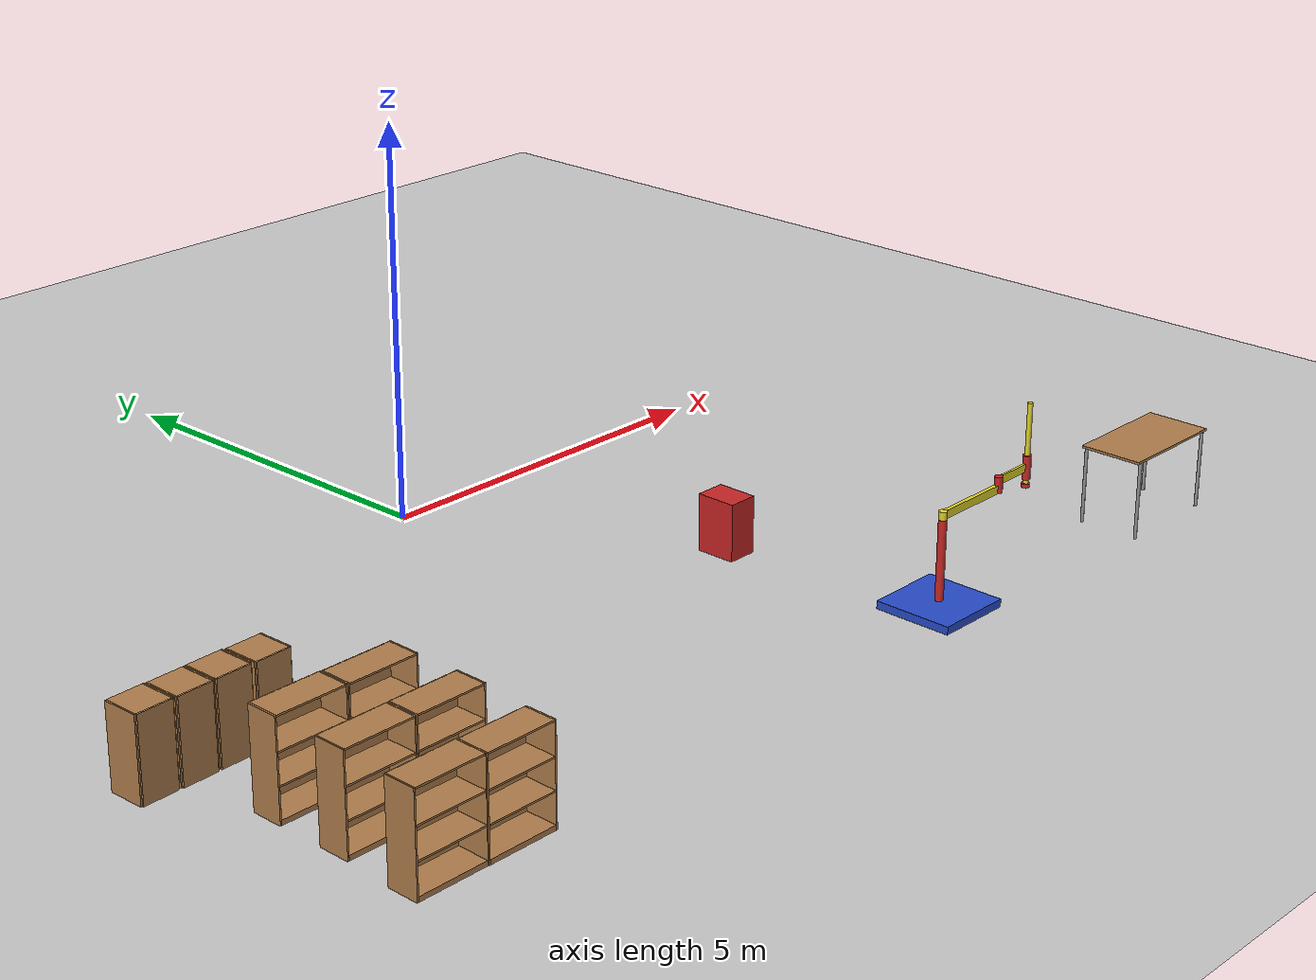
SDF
<sdf version="1.7">
 <world name="default">
  <model name="ground_plane">
   <static>1</static>
   <link name="link">
    <collision name="collision">
     <geometry><plane><normal>0 0 1</normal><size>100 100</size></plane></geometry>
     <surface><friction><ode><mu>100</mu><mu2>50</mu2></ode></friction></surface>
    </collision>
    <visual name="visual">
     <cast_shadows>0</cast_shadows>
     <geometry><plane><normal>0 0 1</normal><size>100 100</size></plane></geometry>
     <material>
      <script><uri>file://media/materials/scripts/gazebo.material</uri><name>Gazebo/Grey</name></script>
     </material>
    </visual>
   </link>
  </model>
  <model name="unit_box_red">
   <link name="link">
    <inertial>
     <mass>1</mass>
     <inertia>
      <ixx>0.166667</ixx>
      <ixy>0</ixy>
      <ixz>0</ixz>
      <iyy>0.166667</iyy>
      <iyz>0</iyz>
      <izz>0.166667</izz>
     </inertia>
    </inertial>
    <visual name="visual">
     <geometry><box><size>0.386843 0.517416 0.730192</size></box></geometry>
     <material>
      <script><name>Gazebo/Red</name><uri>file://media/materials/scripts/gazebo.material</uri></script>
      <shader type="pixel"><normal_map>__default__</normal_map></shader>
      <ambient>1 0 0 1</ambient>
      <diffuse>1 0 0 1</diffuse>
      <specular>0.1 0.1 0.1 1</specular>
      <emissive>0 0 0 1</emissive>
     </material>
    </visual>
    <collision name="collision">
     <geometry><box><size>0.386843 0.517416 0.730192</size></box></geometry>
     <surface>
      <friction>
       <ode><mu>1</mu><mu2>1</mu2><fdir1>0 0 0</fdir1><slip1>0</slip1><slip2>0</slip2></ode>
       <torsional>
        <coefficient>1</coefficient>
        <patch_radius>0</patch_radius>
        <surface_radius>0</surface_radius>
        <use_patch_radius>1</use_patch_radius>
        <ode><slip>0</slip></ode>
       </torsional>
      </friction>
      <bounce><restitution_coefficient>0</restitution_coefficient><threshold>1e+06</threshold></bounce>
      <contact>
       <collide_without_contact>0</collide_without_contact>
       <collide_without_contact_bitmask>1</collide_without_contact_bitmask>
       <collide_bitmask>1</collide_bitmask>
       <ode>
        <soft_cfm>0</soft_cfm>
        <soft_erp>0.2</soft_erp>
        <kp>1e+13</kp>
        <kd>1</kd>
        <max_vel>0.01</max_vel>
        <min_depth>0</min_depth>
       </ode>
       <bullet>
        <split_impulse>1</split_impulse>
        <split_impulse_penetration_threshold>-0.01</split_impulse_penetration_threshold>
        <soft_cfm>0</soft_cfm>
        <soft_erp>0.2</soft_erp>
        <kp>1e+13</kp>
        <kd>1</kd>
       </bullet>
      </contact>
     </surface>
    </collision>
   </link>
   <static>0</static>
   <pose>1.9665 -3.5361 0.365096 -0 -0 -0</pose>
  </model>
  <model name="table_clone_1_clone_0">
   <static>1</static>
   <link name="link">
    <collision name="surface">
     <pose>0 0 1 0 -0 0</pose>
     <geometry><box><size>1.5 0.8 0.03</size></box></geometry>
     <surface><friction><ode><mu>0.6</mu><mu2>0.6</mu2></ode></friction></surface>
    </collision>
    <visual name="visual1">
     <pose>0 0 1 0 -0 0</pose>
     <geometry><box><size>1.5 0.8 0.03</size></box></geometry>
     <material>
      <script><uri>file://media/materials/scripts/gazebo.material</uri><name>Gazebo/Wood</name></script>
     </material>
    </visual>
    <collision name="front_left_leg">
     <pose>0.68 0.38 0.5 0 -0 0</pose>
     <geometry><cylinder><radius>0.02</radius><length>1</length></cylinder></geometry>
    </collision>
    <visual name="front_left_leg">
     <pose>0.68 0.38 0.5 0 -0 0</pose>
     <geometry><cylinder><radius>0.02</radius><length>1</length></cylinder></geometry>
     <material>
      <script><uri>file://media/materials/scripts/gazebo.material</uri><name>Gazebo/Grey</name></script>
     </material>
    </visual>
    <collision name="front_right_leg">
     <pose>0.68 -0.38 0.5 0 -0 0</pose>
     <geometry><cylinder><radius>0.02</radius><length>1</length></cylinder></geometry>
    </collision>
    <visual name="front_right_leg">
     <pose>0.68 -0.38 0.5 0 -0 0</pose>
     <geometry><cylinder><radius>0.02</radius><length>1</length></cylinder></geometry>
     <material>
      <script><uri>file://media/materials/scripts/gazebo.material</uri><name>Gazebo/Grey</name></script>
     </material>
    </visual>
    <collision name="back_right_leg">
     <pose>-0.68 -0.38 0.5 0 -0 0</pose>
     <geometry><cylinder><radius>0.02</radius><length>1</length></cylinder></geometry>
    </collision>
    <visual name="back_right_leg">
     <pose>-0.68 -0.38 0.5 0 -0 0</pose>
     <geometry><cylinder><radius>0.02</radius><length>1</length></cylinder></geometry>
     <material>
      <script><uri>file://media/materials/scripts/gazebo.material</uri><name>Gazebo/Grey</name></script>
     </material>
    </visual>
    <collision name="back_left_leg">
     <pose>-0.68 0.38 0.5 0 -0 0</pose>
     <geometry><cylinder><radius>0.02</radius><length>1</length></cylinder></geometry>
    </collision>
    <visual name="back_left_leg">
     <pose>-0.68 0.38 0.5 0 -0 0</pose>
     <geometry><cylinder><radius>0.02</radius><length>1</length></cylinder></geometry>
     <material>
      <script><uri>file://media/materials/scripts/gazebo.material</uri><name>Gazebo/Grey</name></script>
     </material>
    </visual>
   </link>
   <pose>6.2861 -6.51699 0 0 -0 0</pose>
  </model>
  <model name="bookshelf_clone_0_clone">
   <static>1</static>
   <link name="link">
    <inertial><mass>1</mass></inertial>
    <collision name="back">
     <pose>0 0.005 0.6 0 -0 0</pose>
     <geometry><box><size>0.9 0.01 1.2</size></box></geometry>
    </collision>
    <visual name="visual1">
     <pose>0 0.005 0.6 0 -0 0</pose>
     <geometry><box><size>0.9 0.01 1.2</size></box></geometry>
     <material>
      <script><uri>file://media/materials/scripts/gazebo.material</uri><name>Gazebo/Wood</name></script>
     </material>
    </visual>
    <collision name="left_side">
     <pose>0.45 -0.195 0.6 0 -0 0</pose>
     <geometry><box><size>0.02 0.4 1.2</size></box></geometry>
    </collision>
    <visual name="visual2">
     <pose>0.45 -0.195 0.6 0 -0 0</pose>
     <geometry><box><size>0.02 0.4 1.2</size></box></geometry>
     <material>
      <script><uri>file://media/materials/scripts/gazebo.material</uri><name>Gazebo/Wood</name></script>
     </material>
    </visual>
    <collision name="right_side">
     <pose>-0.45 -0.195 0.6 0 -0 0</pose>
     <geometry><box><size>0.02 0.4 1.2</size></box></geometry>
    </collision>
    <visual name="visual3">
     <pose>-0.45 -0.195 0.6 0 -0 0</pose>
     <geometry><box><size>0.02 0.4 1.2</size></box></geometry>
     <material>
      <script><uri>file://media/materials/scripts/gazebo.material</uri><name>Gazebo/Wood</name></script>
     </material>
    </visual>
    <collision name="bottom">
     <pose>0 -0.195 0.03 0 -0 0</pose>
     <geometry><box><size>0.88 0.4 0.06</size></box></geometry>
    </collision>
    <visual name="visual4">
     <pose>0 -0.195 0.03 0 -0 0</pose>
     <geometry><box><size>0.88 0.4 0.06</size></box></geometry>
     <material>
      <script><uri>file://media/materials/scripts/gazebo.material</uri><name>Gazebo/Wood</name></script>
     </material>
    </visual>
    <collision name="top">
     <pose>0 -0.195 1.19 0 -0 0</pose>
     <geometry><box><size>0.88 0.4 0.02</size></box></geometry>
    </collision>
    <visual name="visual5">
     <pose>0 -0.195 1.19 0 -0 0</pose>
     <geometry><box><size>0.88 0.4 0.02</size></box></geometry>
     <material>
      <script><uri>file://media/materials/scripts/gazebo.material</uri><name>Gazebo/Wood</name></script>
     </material>
    </visual>
    <collision name="low_shelf">
     <pose>0 -0.195 0.43 0 -0 0</pose>
     <geometry><box><size>0.88 0.4 0.02</size></box></geometry>
    </collision>
    <visual name="visual6">
     <pose>0 -0.195 0.43 0 -0 0</pose>
     <geometry><box><size>0.88 0.4 0.02</size></box></geometry>
     <material>
      <script><uri>file://media/materials/scripts/gazebo.material</uri><name>Gazebo/Wood</name></script>
     </material>
    </visual>
    <collision name="high_shelf">
     <pose>0 -0.195 0.8 0 -0 0</pose>
     <geometry><box><size>0.88 0.4 0.02</size></box></geometry>
    </collision>
    <visual name="visual7">
     <pose>0 -0.195 0.8 0 -0 0</pose>
     <geometry><box><size>0.88 0.4 0.02</size></box></geometry>
     <material>
      <script><uri>file://media/materials/scripts/gazebo.material</uri><name>Gazebo/Wood</name></script>
     </material>
    </visual>
   </link>
   <pose>-5.36716 -4.2258 0 0 -0 -0.003358</pose>
  </model>
  <model name="bookshelf_clone_0_clone_clone">
   <static>1</static>
   <link name="link">
    <inertial><mass>1</mass></inertial>
    <collision name="back">
     <pose>0 0.005 0.6 0 -0 0</pose>
     <geometry><box><size>0.9 0.01 1.2</size></box></geometry>
    </collision>
    <visual name="visual1">
     <pose>0 0.005 0.6 0 -0 0</pose>
     <geometry><box><size>0.9 0.01 1.2</size></box></geometry>
     <material>
      <script><uri>file://media/materials/scripts/gazebo.material</uri><name>Gazebo/Wood</name></script>
     </material>
    </visual>
    <collision name="left_side">
     <pose>0.45 -0.195 0.6 0 -0 0</pose>
     <geometry><box><size>0.02 0.4 1.2</size></box></geometry>
    </collision>
    <visual name="visual2">
     <pose>0.45 -0.195 0.6 0 -0 0</pose>
     <geometry><box><size>0.02 0.4 1.2</size></box></geometry>
     <material>
      <script><uri>file://media/materials/scripts/gazebo.material</uri><name>Gazebo/Wood</name></script>
     </material>
    </visual>
    <collision name="right_side">
     <pose>-0.45 -0.195 0.6 0 -0 0</pose>
     <geometry><box><size>0.02 0.4 1.2</size></box></geometry>
    </collision>
    <visual name="visual3">
     <pose>-0.45 -0.195 0.6 0 -0 0</pose>
     <geometry><box><size>0.02 0.4 1.2</size></box></geometry>
     <material>
      <script><uri>file://media/materials/scripts/gazebo.material</uri><name>Gazebo/Wood</name></script>
     </material>
    </visual>
    <collision name="bottom">
     <pose>0 -0.195 0.03 0 -0 0</pose>
     <geometry><box><size>0.88 0.4 0.06</size></box></geometry>
    </collision>
    <visual name="visual4">
     <pose>0 -0.195 0.03 0 -0 0</pose>
     <geometry><box><size>0.88 0.4 0.06</size></box></geometry>
     <material>
      <script><uri>file://media/materials/scripts/gazebo.material</uri><name>Gazebo/Wood</name></script>
     </material>
    </visual>
    <collision name="top">
     <pose>0 -0.195 1.19 0 -0 0</pose>
     <geometry><box><size>0.88 0.4 0.02</size></box></geometry>
    </collision>
    <visual name="visual5">
     <pose>0 -0.195 1.19 0 -0 0</pose>
     <geometry><box><size>0.88 0.4 0.02</size></box></geometry>
     <material>
      <script><uri>file://media/materials/scripts/gazebo.material</uri><name>Gazebo/Wood</name></script>
     </material>
    </visual>
    <collision name="low_shelf">
     <pose>0 -0.195 0.43 0 -0 0</pose>
     <geometry><box><size>0.88 0.4 0.02</size></box></geometry>
    </collision>
    <visual name="visual6">
     <pose>0 -0.195 0.43 0 -0 0</pose>
     <geometry><box><size>0.88 0.4 0.02</size></box></geometry>
     <material>
      <script><uri>file://media/materials/scripts/gazebo.material</uri><name>Gazebo/Wood</name></script>
     </material>
    </visual>
    <collision name="high_shelf">
     <pose>0 -0.195 0.8 0 -0 0</pose>
     <geometry><box><size>0.88 0.4 0.02</size></box></geometry>
    </collision>
    <visual name="visual7">
     <pose>0 -0.195 0.8 0 -0 0</pose>
     <geometry><box><size>0.88 0.4 0.02</size></box></geometry>
     <material>
      <script><uri>file://media/materials/scripts/gazebo.material</uri><name>Gazebo/Wood</name></script>
     </material>
    </visual>
   </link>
   <pose>-5.35952 -5.19703 0 0 0 -0.003358</pose>
  </model>
  <model name="bookshelf_clone_0_clone_clone_0">
   <static>1</static>
   <link name="link">
    <inertial><mass>1</mass></inertial>
    <collision name="back">
     <pose>0 0.005 0.6 0 -0 0</pose>
     <geometry><box><size>0.9 0.01 1.2</size></box></geometry>
    </collision>
    <visual name="visual1">
     <pose>0 0.005 0.6 0 -0 0</pose>
     <geometry><box><size>0.9 0.01 1.2</size></box></geometry>
     <material>
      <script><uri>file://media/materials/scripts/gazebo.material</uri><name>Gazebo/Wood</name></script>
     </material>
    </visual>
    <collision name="left_side">
     <pose>0.45 -0.195 0.6 0 -0 0</pose>
     <geometry><box><size>0.02 0.4 1.2</size></box></geometry>
    </collision>
    <visual name="visual2">
     <pose>0.45 -0.195 0.6 0 -0 0</pose>
     <geometry><box><size>0.02 0.4 1.2</size></box></geometry>
     <material>
      <script><uri>file://media/materials/scripts/gazebo.material</uri><name>Gazebo/Wood</name></script>
     </material>
    </visual>
    <collision name="right_side">
     <pose>-0.45 -0.195 0.6 0 -0 0</pose>
     <geometry><box><size>0.02 0.4 1.2</size></box></geometry>
    </collision>
    <visual name="visual3">
     <pose>-0.45 -0.195 0.6 0 -0 0</pose>
     <geometry><box><size>0.02 0.4 1.2</size></box></geometry>
     <material>
      <script><uri>file://media/materials/scripts/gazebo.material</uri><name>Gazebo/Wood</name></script>
     </material>
    </visual>
    <collision name="bottom">
     <pose>0 -0.195 0.03 0 -0 0</pose>
     <geometry><box><size>0.88 0.4 0.06</size></box></geometry>
    </collision>
    <visual name="visual4">
     <pose>0 -0.195 0.03 0 -0 0</pose>
     <geometry><box><size>0.88 0.4 0.06</size></box></geometry>
     <material>
      <script><uri>file://media/materials/scripts/gazebo.material</uri><name>Gazebo/Wood</name></script>
     </material>
    </visual>
    <collision name="top">
     <pose>0 -0.195 1.19 0 -0 0</pose>
     <geometry><box><size>0.88 0.4 0.02</size></box></geometry>
    </collision>
    <visual name="visual5">
     <pose>0 -0.195 1.19 0 -0 0</pose>
     <geometry><box><size>0.88 0.4 0.02</size></box></geometry>
     <material>
      <script><uri>file://media/materials/scripts/gazebo.material</uri><name>Gazebo/Wood</name></script>
     </material>
    </visual>
    <collision name="low_shelf">
     <pose>0 -0.195 0.43 0 -0 0</pose>
     <geometry><box><size>0.88 0.4 0.02</size></box></geometry>
    </collision>
    <visual name="visual6">
     <pose>0 -0.195 0.43 0 -0 0</pose>
     <geometry><box><size>0.88 0.4 0.02</size></box></geometry>
     <material>
      <script><uri>file://media/materials/scripts/gazebo.material</uri><name>Gazebo/Wood</name></script>
     </material>
    </visual>
    <collision name="high_shelf">
     <pose>0 -0.195 0.8 0 -0 0</pose>
     <geometry><box><size>0.88 0.4 0.02</size></box></geometry>
    </collision>
    <visual name="visual7">
     <pose>0 -0.195 0.8 0 -0 0</pose>
     <geometry><box><size>0.88 0.4 0.02</size></box></geometry>
     <material>
      <script><uri>file://media/materials/scripts/gazebo.material</uri><name>Gazebo/Wood</name></script>
     </material>
    </visual>
   </link>
   <pose>-5.40621 -6.21049 0 0 0 -0.003358</pose>
  </model>
  <model name="bookshelf_clone_0_clone_clone_1">
   <static>1</static>
   <link name="link">
    <inertial><mass>1</mass></inertial>
    <collision name="back">
     <pose>0 0.005 0.6 0 -0 0</pose>
     <geometry><box><size>0.9 0.01 1.2</size></box></geometry>
    </collision>
    <visual name="visual1">
     <pose>0 0.005 0.6 0 -0 0</pose>
     <geometry><box><size>0.9 0.01 1.2</size></box></geometry>
     <material>
      <script><uri>file://media/materials/scripts/gazebo.material</uri><name>Gazebo/Wood</name></script>
     </material>
    </visual>
    <collision name="left_side">
     <pose>0.45 -0.195 0.6 0 -0 0</pose>
     <geometry><box><size>0.02 0.4 1.2</size></box></geometry>
    </collision>
    <visual name="visual2">
     <pose>0.45 -0.195 0.6 0 -0 0</pose>
     <geometry><box><size>0.02 0.4 1.2</size></box></geometry>
     <material>
      <script><uri>file://media/materials/scripts/gazebo.material</uri><name>Gazebo/Wood</name></script>
     </material>
    </visual>
    <collision name="right_side">
     <pose>-0.45 -0.195 0.6 0 -0 0</pose>
     <geometry><box><size>0.02 0.4 1.2</size></box></geometry>
    </collision>
    <visual name="visual3">
     <pose>-0.45 -0.195 0.6 0 -0 0</pose>
     <geometry><box><size>0.02 0.4 1.2</size></box></geometry>
     <material>
      <script><uri>file://media/materials/scripts/gazebo.material</uri><name>Gazebo/Wood</name></script>
     </material>
    </visual>
    <collision name="bottom">
     <pose>0 -0.195 0.03 0 -0 0</pose>
     <geometry><box><size>0.88 0.4 0.06</size></box></geometry>
    </collision>
    <visual name="visual4">
     <pose>0 -0.195 0.03 0 -0 0</pose>
     <geometry><box><size>0.88 0.4 0.06</size></box></geometry>
     <material>
      <script><uri>file://media/materials/scripts/gazebo.material</uri><name>Gazebo/Wood</name></script>
     </material>
    </visual>
    <collision name="top">
     <pose>0 -0.195 1.19 0 -0 0</pose>
     <geometry><box><size>0.88 0.4 0.02</size></box></geometry>
    </collision>
    <visual name="visual5">
     <pose>0 -0.195 1.19 0 -0 0</pose>
     <geometry><box><size>0.88 0.4 0.02</size></box></geometry>
     <material>
      <script><uri>file://media/materials/scripts/gazebo.material</uri><name>Gazebo/Wood</name></script>
     </material>
    </visual>
    <collision name="low_shelf">
     <pose>0 -0.195 0.43 0 -0 0</pose>
     <geometry><box><size>0.88 0.4 0.02</size></box></geometry>
    </collision>
    <visual name="visual6">
     <pose>0 -0.195 0.43 0 -0 0</pose>
     <geometry><box><size>0.88 0.4 0.02</size></box></geometry>
     <material>
      <script><uri>file://media/materials/scripts/gazebo.material</uri><name>Gazebo/Wood</name></script>
     </material>
    </visual>
    <collision name="high_shelf">
     <pose>0 -0.195 0.8 0 -0 0</pose>
     <geometry><box><size>0.88 0.4 0.02</size></box></geometry>
    </collision>
    <visual name="visual7">
     <pose>0 -0.195 0.8 0 -0 0</pose>
     <geometry><box><size>0.88 0.4 0.02</size></box></geometry>
     <material>
      <script><uri>file://media/materials/scripts/gazebo.material</uri><name>Gazebo/Wood</name></script>
     </material>
    </visual>
   </link>
   <pose>-4.44628 -4.23575 0 0 0 -0.003358</pose>
  </model>
  <model name="bookshelf_clone_0_clone_clone_2">
   <static>1</static>
   <link name="link">
    <inertial><mass>1</mass></inertial>
    <collision name="back">
     <pose>0 0.005 0.6 0 -0 0</pose>
     <geometry><box><size>0.9 0.01 1.2</size></box></geometry>
    </collision>
    <visual name="visual1">
     <pose>0 0.005 0.6 0 -0 0</pose>
     <geometry><box><size>0.9 0.01 1.2</size></box></geometry>
     <material>
      <script><uri>file://media/materials/scripts/gazebo.material</uri><name>Gazebo/Wood</name></script>
     </material>
    </visual>
    <collision name="left_side">
     <pose>0.45 -0.195 0.6 0 -0 0</pose>
     <geometry><box><size>0.02 0.4 1.2</size></box></geometry>
    </collision>
    <visual name="visual2">
     <pose>0.45 -0.195 0.6 0 -0 0</pose>
     <geometry><box><size>0.02 0.4 1.2</size></box></geometry>
     <material>
      <script><uri>file://media/materials/scripts/gazebo.material</uri><name>Gazebo/Wood</name></script>
     </material>
    </visual>
    <collision name="right_side">
     <pose>-0.45 -0.195 0.6 0 -0 0</pose>
     <geometry><box><size>0.02 0.4 1.2</size></box></geometry>
    </collision>
    <visual name="visual3">
     <pose>-0.45 -0.195 0.6 0 -0 0</pose>
     <geometry><box><size>0.02 0.4 1.2</size></box></geometry>
     <material>
      <script><uri>file://media/materials/scripts/gazebo.material</uri><name>Gazebo/Wood</name></script>
     </material>
    </visual>
    <collision name="bottom">
     <pose>0 -0.195 0.03 0 -0 0</pose>
     <geometry><box><size>0.88 0.4 0.06</size></box></geometry>
    </collision>
    <visual name="visual4">
     <pose>0 -0.195 0.03 0 -0 0</pose>
     <geometry><box><size>0.88 0.4 0.06</size></box></geometry>
     <material>
      <script><uri>file://media/materials/scripts/gazebo.material</uri><name>Gazebo/Wood</name></script>
     </material>
    </visual>
    <collision name="top">
     <pose>0 -0.195 1.19 0 -0 0</pose>
     <geometry><box><size>0.88 0.4 0.02</size></box></geometry>
    </collision>
    <visual name="visual5">
     <pose>0 -0.195 1.19 0 -0 0</pose>
     <geometry><box><size>0.88 0.4 0.02</size></box></geometry>
     <material>
      <script><uri>file://media/materials/scripts/gazebo.material</uri><name>Gazebo/Wood</name></script>
     </material>
    </visual>
    <collision name="low_shelf">
     <pose>0 -0.195 0.43 0 -0 0</pose>
     <geometry><box><size>0.88 0.4 0.02</size></box></geometry>
    </collision>
    <visual name="visual6">
     <pose>0 -0.195 0.43 0 -0 0</pose>
     <geometry><box><size>0.88 0.4 0.02</size></box></geometry>
     <material>
      <script><uri>file://media/materials/scripts/gazebo.material</uri><name>Gazebo/Wood</name></script>
     </material>
    </visual>
    <collision name="high_shelf">
     <pose>0 -0.195 0.8 0 -0 0</pose>
     <geometry><box><size>0.88 0.4 0.02</size></box></geometry>
    </collision>
    <visual name="visual7">
     <pose>0 -0.195 0.8 0 -0 0</pose>
     <geometry><box><size>0.88 0.4 0.02</size></box></geometry>
     <material>
      <script><uri>file://media/materials/scripts/gazebo.material</uri><name>Gazebo/Wood</name></script>
     </material>
    </visual>
   </link>
   <pose>-4.43433 -5.19452 0 0 0 -0.003358</pose>
  </model>
  <model name="bookshelf_clone_0_clone_clone_3">
   <static>1</static>
   <link name="link">
    <inertial><mass>1</mass></inertial>
    <collision name="back">
     <pose>0 0.005 0.6 0 -0 0</pose>
     <geometry><box><size>0.9 0.01 1.2</size></box></geometry>
    </collision>
    <visual name="visual1">
     <pose>0 0.005 0.6 0 -0 0</pose>
     <geometry><box><size>0.9 0.01 1.2</size></box></geometry>
     <material>
      <script><uri>file://media/materials/scripts/gazebo.material</uri><name>Gazebo/Wood</name></script>
     </material>
    </visual>
    <collision name="left_side">
     <pose>0.45 -0.195 0.6 0 -0 0</pose>
     <geometry><box><size>0.02 0.4 1.2</size></box></geometry>
    </collision>
    <visual name="visual2">
     <pose>0.45 -0.195 0.6 0 -0 0</pose>
     <geometry><box><size>0.02 0.4 1.2</size></box></geometry>
     <material>
      <script><uri>file://media/materials/scripts/gazebo.material</uri><name>Gazebo/Wood</name></script>
     </material>
    </visual>
    <collision name="right_side">
     <pose>-0.45 -0.195 0.6 0 -0 0</pose>
     <geometry><box><size>0.02 0.4 1.2</size></box></geometry>
    </collision>
    <visual name="visual3">
     <pose>-0.45 -0.195 0.6 0 -0 0</pose>
     <geometry><box><size>0.02 0.4 1.2</size></box></geometry>
     <material>
      <script><uri>file://media/materials/scripts/gazebo.material</uri><name>Gazebo/Wood</name></script>
     </material>
    </visual>
    <collision name="bottom">
     <pose>0 -0.195 0.03 0 -0 0</pose>
     <geometry><box><size>0.88 0.4 0.06</size></box></geometry>
    </collision>
    <visual name="visual4">
     <pose>0 -0.195 0.03 0 -0 0</pose>
     <geometry><box><size>0.88 0.4 0.06</size></box></geometry>
     <material>
      <script><uri>file://media/materials/scripts/gazebo.material</uri><name>Gazebo/Wood</name></script>
     </material>
    </visual>
    <collision name="top">
     <pose>0 -0.195 1.19 0 -0 0</pose>
     <geometry><box><size>0.88 0.4 0.02</size></box></geometry>
    </collision>
    <visual name="visual5">
     <pose>0 -0.195 1.19 0 -0 0</pose>
     <geometry><box><size>0.88 0.4 0.02</size></box></geometry>
     <material>
      <script><uri>file://media/materials/scripts/gazebo.material</uri><name>Gazebo/Wood</name></script>
     </material>
    </visual>
    <collision name="low_shelf">
     <pose>0 -0.195 0.43 0 -0 0</pose>
     <geometry><box><size>0.88 0.4 0.02</size></box></geometry>
    </collision>
    <visual name="visual6">
     <pose>0 -0.195 0.43 0 -0 0</pose>
     <geometry><box><size>0.88 0.4 0.02</size></box></geometry>
     <material>
      <script><uri>file://media/materials/scripts/gazebo.material</uri><name>Gazebo/Wood</name></script>
     </material>
    </visual>
    <collision name="high_shelf">
     <pose>0 -0.195 0.8 0 -0 0</pose>
     <geometry><box><size>0.88 0.4 0.02</size></box></geometry>
    </collision>
    <visual name="visual7">
     <pose>0 -0.195 0.8 0 -0 0</pose>
     <geometry><box><size>0.88 0.4 0.02</size></box></geometry>
     <material>
      <script><uri>file://media/materials/scripts/gazebo.material</uri><name>Gazebo/Wood</name></script>
     </material>
    </visual>
   </link>
   <pose>-4.50283 -6.22195 0 0 0 -0.003358</pose>
  </model>
  <model name="simple_arm">
   <link name="arm_base">
    <inertial>
     <pose>0 0 0.00099 0 -0 0</pose>
     <inertia><ixx>1.11</ixx><ixy>0</ixy><ixz>0</ixz><iyy>100.11</iyy><iyz>0</iyz><izz>1.01</izz></inertia>
     <mass>101</mass>
    </inertial>
    <collision name="arm_base_geom">
     <pose>0 0 0.05 0 -0 0</pose>
     <geometry><box><size>1 1 0.1</size></box></geometry>
    </collision>
    <visual name="arm_base_geom_visual">
     <pose>0 0 0.05 0 -0 0</pose>
     <geometry><box><size>1 1 0.1</size></box></geometry>
     <material>
      <script><uri>file://media/materials/scripts/gazebo.material</uri><name>Gazebo/Blue</name></script>
     </material>
    </visual>
    <collision name="arm_base_geom_arm_trunk">
     <pose>0 0 0.6 0 -0 0</pose>
     <geometry><cylinder><radius>0.05</radius><length>1</length></cylinder></geometry>
    </collision>
    <visual name="arm_base_geom_arm_trunk_visual">
     <pose>0 0 0.6 0 -0 0</pose>
     <geometry><cylinder><radius>0.05</radius><length>1</length></cylinder></geometry>
     <material>
      <script><uri>file://media/materials/scripts/gazebo.material</uri><name>Gazebo/Red</name></script>
     </material>
    </visual>
   </link>
   <link name="arm_shoulder_pan">
    <pose>0 0 1.1 0 -0 0</pose>
    <inertial>
     <pose>0.045455 0 0 0 -0 0</pose>
     <inertia><ixx>0.011</ixx><ixy>0</ixy><ixz>0</ixz><iyy>0.0225</iyy><iyz>0</iyz><izz>0.0135</izz></inertia>
     <mass>1.1</mass>
    </inertial>
    <collision name="arm_shoulder_pan_geom">
     <pose>0 0 0.05 0 -0 0</pose>
     <geometry><cylinder><radius>0.05</radius><length>0.1</length></cylinder></geometry>
    </collision>
    <visual name="arm_shoulder_pan_geom_visual">
     <pose>0 0 0.05 0 -0 0</pose>
     <geometry><cylinder><radius>0.05</radius><length>0.1</length></cylinder></geometry>
     <material>
      <script><uri>file://media/materials/scripts/gazebo.material</uri><name>Gazebo/Yellow</name></script>
     </material>
    </visual>
    <collision name="arm_shoulder_pan_geom_arm_shoulder">
     <pose>0.55 0 0.05 0 -0 0</pose>
     <geometry><box><size>1 0.05 0.1</size></box></geometry>
    </collision>
    <visual name="arm_shoulder_pan_geom_arm_shoulder_visual">
     <pose>0.55 0 0.05 0 -0 0</pose>
     <geometry><box><size>1 0.05 0.1</size></box></geometry>
     <material>
      <script><uri>file://media/materials/scripts/gazebo.material</uri><name>Gazebo/Yellow</name></script>
     </material>
    </visual>
   </link>
   <link name="arm_elbow_pan">
    <pose>1.05 0 1.1 0 -0 0</pose>
    <inertial>
     <pose>0.0875 0 0.083333 0 -0 0</pose>
     <inertia>
      <ixx>0.031</ixx>
      <ixy>0</ixy>
      <ixz>0.005</ixz>
      <iyy>0.07275</iyy>
      <iyz>0</iyz>
      <izz>0.04475</izz>
     </inertia>
     <mass>1.2</mass>
    </inertial>
    <collision name="arm_elbow_pan_geom">
     <pose>0 0 0.1 0 -0 0</pose>
     <geometry><cylinder><radius>0.05</radius><length>0.2</length></cylinder></geometry>
    </collision>
    <visual name="arm_elbow_pan_geom_visual">
     <pose>0 0 0.1 0 -0 0</pose>
     <geometry><cylinder><radius>0.05</radius><length>0.2</length></cylinder></geometry>
     <material>
      <script><uri>file://media/materials/scripts/gazebo.material</uri><name>Gazebo/Red</name></script>
     </material>
    </visual>
    <collision name="arm_elbow_pan_geom_arm_elbow">
     <pose>0.3 0 0.15 0 -0 0</pose>
     <geometry><box><size>0.5 0.03 0.1</size></box></geometry>
    </collision>
    <visual name="arm_elbow_pan_geom_arm_elbow_visual">
     <pose>0.3 0 0.15 0 -0 0</pose>
     <geometry><box><size>0.5 0.03 0.1</size></box></geometry>
     <material>
      <script><uri>file://media/materials/scripts/gazebo.material</uri><name>Gazebo/Yellow</name></script>
     </material>
    </visual>
    <collision name="arm_elbow_pan_geom_arm_wrist">
     <pose>0.55 0 0.15 0 -0 0</pose>
     <geometry><cylinder><radius>0.05</radius><length>0.3</length></cylinder></geometry>
    </collision>
    <visual name="arm_elbow_pan_geom_arm_wrist_visual">
     <pose>0.55 0 0.15 0 -0 0</pose>
     <geometry><cylinder><radius>0.05</radius><length>0.3</length></cylinder></geometry>
     <material>
      <script><uri>file://media/materials/scripts/gazebo.material</uri><name>Gazebo/Red</name></script>
     </material>
    </visual>
   </link>
   <link name="arm_wrist_lift">
    <pose>1.6 0 1.05 0 -0 0</pose>
    <inertial>
     <inertia><ixx>0.01</ixx><ixy>0</ixy><ixz>0</ixz><iyy>0.01</iyy><iyz>0</iyz><izz>0.001</izz></inertia>
     <mass>0.1</mass>
    </inertial>
    <collision name="arm_wrist_lift_geom">
     <pose>0 0 0.5 0 -0 0</pose>
     <geometry><cylinder><radius>0.03</radius><length>1</length></cylinder></geometry>
    </collision>
    <visual name="arm_wrist_lift_geom_visual">
     <pose>0 0 0.5 0 -0 0</pose>
     <geometry><cylinder><radius>0.03</radius><length>1</length></cylinder></geometry>
     <material>
      <script><uri>file://media/materials/scripts/gazebo.material</uri><name>Gazebo/Yellow</name></script>
     </material>
    </visual>
   </link>
   <link name="arm_wrist_roll">
    <pose>1.6 0 1 0 -0 0</pose>
    <inertial>
     <inertia><ixx>0.01</ixx><ixy>0</ixy><ixz>0</ixz><iyy>0.01</iyy><iyz>0</iyz><izz>0.001</izz></inertia>
     <mass>0.1</mass>
    </inertial>
    <collision name="arm_wrist_roll_geom">
     <pose>0 0 0.025 0 -0 0</pose>
     <geometry><cylinder><radius>0.05</radius><length>0.05</length></cylinder></geometry>
    </collision>
    <visual name="arm_wrist_roll_geom_visual">
     <pose>0 0 0.025 0 -0 0</pose>
     <geometry><cylinder><radius>0.05</radius><length>0.05</length></cylinder></geometry>
     <material>
      <script><uri>file://media/materials/scripts/gazebo.material</uri><name>Gazebo/Red</name></script>
     </material>
    </visual>
   </link>
   <joint name="arm_shoulder_pan_joint" type="revolute">
    <parent>arm_base</parent>
    <child>arm_shoulder_pan</child>
    <axis>
     <dynamics>
      <damping>1</damping>
      <friction>0</friction>
      <spring_reference>0</spring_reference>
      <spring_stiffness>0</spring_stiffness>
     </dynamics>
     <xyz expressed_in="__model__">0 0 1</xyz>
     <limit><lower>-1e+16</lower><upper>1e+16</upper></limit>
    </axis>
   </joint>
   <joint name="arm_elbow_pan_joint" type="revolute">
    <parent>arm_shoulder_pan</parent>
    <child>arm_elbow_pan</child>
    <axis>
     <dynamics>
      <damping>1</damping>
      <friction>0</friction>
      <spring_reference>0</spring_reference>
      <spring_stiffness>0</spring_stiffness>
     </dynamics>
     <xyz expressed_in="__model__">0 0 1</xyz>
     <limit><lower>-1e+16</lower><upper>1e+16</upper></limit>
    </axis>
   </joint>
   <joint name="arm_wrist_lift_joint" type="prismatic">
    <parent>arm_elbow_pan</parent>
    <child>arm_wrist_lift</child>
    <axis>
     <dynamics>
      <damping>1</damping>
      <friction>0</friction>
      <spring_reference>0</spring_reference>
      <spring_stiffness>0</spring_stiffness>
     </dynamics>
     <limit><lower>-0.8</lower><upper>0.1</upper></limit>
     <xyz expressed_in="__model__">0 0 1</xyz>
    </axis>
   </joint>
   <joint name="arm_wrist_roll_joint" type="revolute">
    <parent>arm_wrist_lift</parent>
    <child>arm_wrist_roll</child>
    <axis>
     <dynamics>
      <damping>1</damping>
      <friction>0</friction>
      <spring_reference>0</spring_reference>
      <spring_stiffness>0</spring_stiffness>
     </dynamics>
     <limit><lower>-2.99999</lower><upper>2.99999</upper></limit>
     <xyz expressed_in="__model__">0 0 1</xyz>
    </axis>
   </joint>
   <pose>2.44029 -6.32838 -0 0 0 -0.00357</pose>
  </model>
  <model name="cabinet_clone">
   <static>1</static>
   <link name="cabinet_bottom_plate">
    <inertial>
     <pose>0 0 -1 0 -0 0</pose>
     <inertia><ixx>2.05</ixx><ixy>0</ixy><ixz>0</ixz><iyy>2.05</iyy><iyz>0</iyz><izz>2.05</izz></inertia>
     <mass>25</mass>
    </inertial>
    <collision name="cabinet_bottom_plate_geom">
     <pose>0 0 0.01 0 -0 0</pose>
     <geometry><box><size>0.45 0.45 0.02</size></box></geometry>
    </collision>
    <visual name="cabinet_bottom_plate_geom_visual">
     <pose>0 0 0.01 0 -0 0</pose>
     <geometry><box><size>0.45 0.45 0.02</size></box></geometry>
     <material>
      <script><uri>file://media/materials/scripts/gazebo.material</uri><name>Gazebo/Wood</name></script>
     </material>
    </visual>
    <collision name="cabinet_bottom_plate_geom_cabinet_back_plate">
     <pose>0.235 0 0.51 0 -0 0</pose>
     <geometry><box><size>0.02 0.45 1.02</size></box></geometry>
    </collision>
    <visual name="cabinet_bottom_plate_geom_cabinet_back_plate_visual">
     <pose>0.235 0 0.51 0 -0 0</pose>
     <geometry><box><size>0.02 0.45 1.02</size></box></geometry>
     <material>
      <script><uri>file://media/materials/scripts/gazebo.material</uri><name>Gazebo/Wood</name></script>
     </material>
    </visual>
    <collision name="cabinet_bottom_plate_geom_cabinet_left_plate">
     <pose>0 0.235 0.51 0 -0 0</pose>
     <geometry><box><size>0.45 0.02 1.02</size></box></geometry>
    </collision>
    <visual name="cabinet_bottom_plate_geom_cabinet_left_plate_visual">
     <pose>0 0.235 0.51 0 -0 0</pose>
     <geometry><box><size>0.45 0.02 1.02</size></box></geometry>
     <material>
      <script><uri>file://media/materials/scripts/gazebo.material</uri><name>Gazebo/Wood</name></script>
     </material>
    </visual>
    <collision name="cabinet_bottom_plate_geom_cabinet_middle_plate">
     <pose>0 0 0.51 0 -0 0</pose>
     <geometry><box><size>0.45 0.45 0.02</size></box></geometry>
    </collision>
    <visual name="cabinet_bottom_plate_geom_cabinet_middle_plate_visual">
     <pose>0 0 0.51 0 -0 0</pose>
     <geometry><box><size>0.45 0.45 0.02</size></box></geometry>
     <material>
      <script><uri>file://media/materials/scripts/gazebo.material</uri><name>Gazebo/Wood</name></script>
     </material>
    </visual>
    <collision name="cabinet_bottom_plate_geom_cabinet_right_plate">
     <pose>0 -0.235 0.51 0 -0 0</pose>
     <geometry><box><size>0.45 0.02 1.02</size></box></geometry>
    </collision>
    <visual name="cabinet_bottom_plate_geom_cabinet_right_plate_visual">
     <pose>0 -0.235 0.51 0 -0 0</pose>
     <geometry><box><size>0.45 0.02 1.02</size></box></geometry>
     <material>
      <script><uri>file://media/materials/scripts/gazebo.material</uri><name>Gazebo/Wood</name></script>
     </material>
    </visual>
    <collision name="cabinet_bottom_plate_geom_cabinet_top_plate">
     <pose>0 0 1.01 0 -0 0</pose>
     <geometry><box><size>0.45 0.45 0.02</size></box></geometry>
    </collision>
    <visual name="cabinet_bottom_plate_geom_cabinet_top_plate_visual">
     <pose>0 0 1.01 0 -0 0</pose>
     <geometry><box><size>0.45 0.45 0.02</size></box></geometry>
     <material>
      <script><uri>file://media/materials/scripts/gazebo.material</uri><name>Gazebo/Wood</name></script>
     </material>
    </visual>
   </link>
   <pose>-4.77064 -3.08143 0 0 0 -1.54048</pose>
  </model>
  <model name="cabinet_clone_0">
   <static>1</static>
   <link name="cabinet_bottom_plate">
    <inertial>
     <pose>0 0 -1 0 -0 0</pose>
     <inertia><ixx>2.05</ixx><ixy>0</ixy><ixz>0</ixz><iyy>2.05</iyy><iyz>0</iyz><izz>2.05</izz></inertia>
     <mass>25</mass>
    </inertial>
    <collision name="cabinet_bottom_plate_geom">
     <pose>0 0 0.01 0 -0 0</pose>
     <geometry><box><size>0.45 0.45 0.02</size></box></geometry>
    </collision>
    <visual name="cabinet_bottom_plate_geom_visual">
     <pose>0 0 0.01 0 -0 0</pose>
     <geometry><box><size>0.45 0.45 0.02</size></box></geometry>
     <material>
      <script><uri>file://media/materials/scripts/gazebo.material</uri><name>Gazebo/Wood</name></script>
     </material>
    </visual>
    <collision name="cabinet_bottom_plate_geom_cabinet_back_plate">
     <pose>0.235 0 0.51 0 -0 0</pose>
     <geometry><box><size>0.02 0.45 1.02</size></box></geometry>
    </collision>
    <visual name="cabinet_bottom_plate_geom_cabinet_back_plate_visual">
     <pose>0.235 0 0.51 0 -0 0</pose>
     <geometry><box><size>0.02 0.45 1.02</size></box></geometry>
     <material>
      <script><uri>file://media/materials/scripts/gazebo.material</uri><name>Gazebo/Wood</name></script>
     </material>
    </visual>
    <collision name="cabinet_bottom_plate_geom_cabinet_left_plate">
     <pose>0 0.235 0.51 0 -0 0</pose>
     <geometry><box><size>0.45 0.02 1.02</size></box></geometry>
    </collision>
    <visual name="cabinet_bottom_plate_geom_cabinet_left_plate_visual">
     <pose>0 0.235 0.51 0 -0 0</pose>
     <geometry><box><size>0.45 0.02 1.02</size></box></geometry>
     <material>
      <script><uri>file://media/materials/scripts/gazebo.material</uri><name>Gazebo/Wood</name></script>
     </material>
    </visual>
    <collision name="cabinet_bottom_plate_geom_cabinet_middle_plate">
     <pose>0 0 0.51 0 -0 0</pose>
     <geometry><box><size>0.45 0.45 0.02</size></box></geometry>
    </collision>
    <visual name="cabinet_bottom_plate_geom_cabinet_middle_plate_visual">
     <pose>0 0 0.51 0 -0 0</pose>
     <geometry><box><size>0.45 0.45 0.02</size></box></geometry>
     <material>
      <script><uri>file://media/materials/scripts/gazebo.material</uri><name>Gazebo/Wood</name></script>
     </material>
    </visual>
    <collision name="cabinet_bottom_plate_geom_cabinet_right_plate">
     <pose>0 -0.235 0.51 0 -0 0</pose>
     <geometry><box><size>0.45 0.02 1.02</size></box></geometry>
    </collision>
    <visual name="cabinet_bottom_plate_geom_cabinet_right_plate_visual">
     <pose>0 -0.235 0.51 0 -0 0</pose>
     <geometry><box><size>0.45 0.02 1.02</size></box></geometry>
     <material>
      <script><uri>file://media/materials/scripts/gazebo.material</uri><name>Gazebo/Wood</name></script>
     </material>
    </visual>
    <collision name="cabinet_bottom_plate_geom_cabinet_top_plate">
     <pose>0 0 1.01 0 -0 0</pose>
     <geometry><box><size>0.45 0.45 0.02</size></box></geometry>
    </collision>
    <visual name="cabinet_bottom_plate_geom_cabinet_top_plate_visual">
     <pose>0 0 1.01 0 -0 0</pose>
     <geometry><box><size>0.45 0.45 0.02</size></box></geometry>
     <material>
      <script><uri>file://media/materials/scripts/gazebo.material</uri><name>Gazebo/Wood</name></script>
     </material>
    </visual>
   </link>
   <pose>-5.28283 -3.07919 0 0 0 -1.54048</pose>
  </model>
  <model name="cabinet_clone_1">
   <static>1</static>
   <link name="cabinet_bottom_plate">
    <inertial>
     <pose>0 0 -1 0 -0 0</pose>
     <inertia><ixx>2.05</ixx><ixy>0</ixy><ixz>0</ixz><iyy>2.05</iyy><iyz>0</iyz><izz>2.05</izz></inertia>
     <mass>25</mass>
    </inertial>
    <collision name="cabinet_bottom_plate_geom">
     <pose>0 0 0.01 0 -0 0</pose>
     <geometry><box><size>0.45 0.45 0.02</size></box></geometry>
    </collision>
    <visual name="cabinet_bottom_plate_geom_visual">
     <pose>0 0 0.01 0 -0 0</pose>
     <geometry><box><size>0.45 0.45 0.02</size></box></geometry>
     <material>
      <script><uri>file://media/materials/scripts/gazebo.material</uri><name>Gazebo/Wood</name></script>
     </material>
    </visual>
    <collision name="cabinet_bottom_plate_geom_cabinet_back_plate">
     <pose>0.235 0 0.51 0 -0 0</pose>
     <geometry><box><size>0.02 0.45 1.02</size></box></geometry>
    </collision>
    <visual name="cabinet_bottom_plate_geom_cabinet_back_plate_visual">
     <pose>0.235 0 0.51 0 -0 0</pose>
     <geometry><box><size>0.02 0.45 1.02</size></box></geometry>
     <material>
      <script><uri>file://media/materials/scripts/gazebo.material</uri><name>Gazebo/Wood</name></script>
     </material>
    </visual>
    <collision name="cabinet_bottom_plate_geom_cabinet_left_plate">
     <pose>0 0.235 0.51 0 -0 0</pose>
     <geometry><box><size>0.45 0.02 1.02</size></box></geometry>
    </collision>
    <visual name="cabinet_bottom_plate_geom_cabinet_left_plate_visual">
     <pose>0 0.235 0.51 0 -0 0</pose>
     <geometry><box><size>0.45 0.02 1.02</size></box></geometry>
     <material>
      <script><uri>file://media/materials/scripts/gazebo.material</uri><name>Gazebo/Wood</name></script>
     </material>
    </visual>
    <collision name="cabinet_bottom_plate_geom_cabinet_middle_plate">
     <pose>0 0 0.51 0 -0 0</pose>
     <geometry><box><size>0.45 0.45 0.02</size></box></geometry>
    </collision>
    <visual name="cabinet_bottom_plate_geom_cabinet_middle_plate_visual">
     <pose>0 0 0.51 0 -0 0</pose>
     <geometry><box><size>0.45 0.45 0.02</size></box></geometry>
     <material>
      <script><uri>file://media/materials/scripts/gazebo.material</uri><name>Gazebo/Wood</name></script>
     </material>
    </visual>
    <collision name="cabinet_bottom_plate_geom_cabinet_right_plate">
     <pose>0 -0.235 0.51 0 -0 0</pose>
     <geometry><box><size>0.45 0.02 1.02</size></box></geometry>
    </collision>
    <visual name="cabinet_bottom_plate_geom_cabinet_right_plate_visual">
     <pose>0 -0.235 0.51 0 -0 0</pose>
     <geometry><box><size>0.45 0.02 1.02</size></box></geometry>
     <material>
      <script><uri>file://media/materials/scripts/gazebo.material</uri><name>Gazebo/Wood</name></script>
     </material>
    </visual>
    <collision name="cabinet_bottom_plate_geom_cabinet_top_plate">
     <pose>0 0 1.01 0 -0 0</pose>
     <geometry><box><size>0.45 0.45 0.02</size></box></geometry>
    </collision>
    <visual name="cabinet_bottom_plate_geom_cabinet_top_plate_visual">
     <pose>0 0 1.01 0 -0 0</pose>
     <geometry><box><size>0.45 0.45 0.02</size></box></geometry>
     <material>
      <script><uri>file://media/materials/scripts/gazebo.material</uri><name>Gazebo/Wood</name></script>
     </material>
    </visual>
   </link>
   <pose>-5.7832 -3.09775 0 0 0 -1.54048</pose>
  </model>
  <model name="cabinet_clone_2">
   <static>1</static>
   <link name="cabinet_bottom_plate">
    <inertial>
     <pose>0 0 -1 0 -0 0</pose>
     <inertia><ixx>2.05</ixx><ixy>0</ixy><ixz>0</ixz><iyy>2.05</iyy><iyz>0</iyz><izz>2.05</izz></inertia>
     <mass>25</mass>
    </inertial>
    <collision name="cabinet_bottom_plate_geom">
     <pose>0 0 0.01 0 -0 0</pose>
     <geometry><box><size>0.45 0.45 0.02</size></box></geometry>
    </collision>
    <visual name="cabinet_bottom_plate_geom_visual">
     <pose>0 0 0.01 0 -0 0</pose>
     <geometry><box><size>0.45 0.45 0.02</size></box></geometry>
     <material>
      <script><uri>file://media/materials/scripts/gazebo.material</uri><name>Gazebo/Wood</name></script>
     </material>
    </visual>
    <collision name="cabinet_bottom_plate_geom_cabinet_back_plate">
     <pose>0.235 0 0.51 0 -0 0</pose>
     <geometry><box><size>0.02 0.45 1.02</size></box></geometry>
    </collision>
    <visual name="cabinet_bottom_plate_geom_cabinet_back_plate_visual">
     <pose>0.235 0 0.51 0 -0 0</pose>
     <geometry><box><size>0.02 0.45 1.02</size></box></geometry>
     <material>
      <script><uri>file://media/materials/scripts/gazebo.material</uri><name>Gazebo/Wood</name></script>
     </material>
    </visual>
    <collision name="cabinet_bottom_plate_geom_cabinet_left_plate">
     <pose>0 0.235 0.51 0 -0 0</pose>
     <geometry><box><size>0.45 0.02 1.02</size></box></geometry>
    </collision>
    <visual name="cabinet_bottom_plate_geom_cabinet_left_plate_visual">
     <pose>0 0.235 0.51 0 -0 0</pose>
     <geometry><box><size>0.45 0.02 1.02</size></box></geometry>
     <material>
      <script><uri>file://media/materials/scripts/gazebo.material</uri><name>Gazebo/Wood</name></script>
     </material>
    </visual>
    <collision name="cabinet_bottom_plate_geom_cabinet_middle_plate">
     <pose>0 0 0.51 0 -0 0</pose>
     <geometry><box><size>0.45 0.45 0.02</size></box></geometry>
    </collision>
    <visual name="cabinet_bottom_plate_geom_cabinet_middle_plate_visual">
     <pose>0 0 0.51 0 -0 0</pose>
     <geometry><box><size>0.45 0.45 0.02</size></box></geometry>
     <material>
      <script><uri>file://media/materials/scripts/gazebo.material</uri><name>Gazebo/Wood</name></script>
     </material>
    </visual>
    <collision name="cabinet_bottom_plate_geom_cabinet_right_plate">
     <pose>0 -0.235 0.51 0 -0 0</pose>
     <geometry><box><size>0.45 0.02 1.02</size></box></geometry>
    </collision>
    <visual name="cabinet_bottom_plate_geom_cabinet_right_plate_visual">
     <pose>0 -0.235 0.51 0 -0 0</pose>
     <geometry><box><size>0.45 0.02 1.02</size></box></geometry>
     <material>
      <script><uri>file://media/materials/scripts/gazebo.material</uri><name>Gazebo/Wood</name></script>
     </material>
    </visual>
    <collision name="cabinet_bottom_plate_geom_cabinet_top_plate">
     <pose>0 0 1.01 0 -0 0</pose>
     <geometry><box><size>0.45 0.45 0.02</size></box></geometry>
    </collision>
    <visual name="cabinet_bottom_plate_geom_cabinet_top_plate_visual">
     <pose>0 0 1.01 0 -0 0</pose>
     <geometry><box><size>0.45 0.45 0.02</size></box></geometry>
     <material>
      <script><uri>file://media/materials/scripts/gazebo.material</uri><name>Gazebo/Wood</name></script>
     </material>
    </visual>
   </link>
   <pose>-6.28264 -3.10307 0 0 0 -1.54048</pose>
  </model>
 </world>
</sdf>
